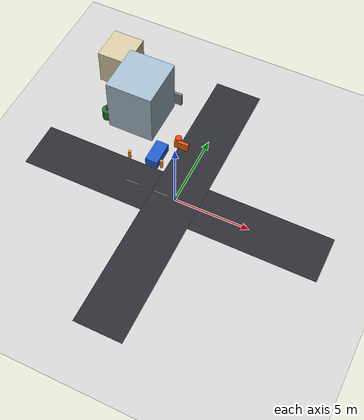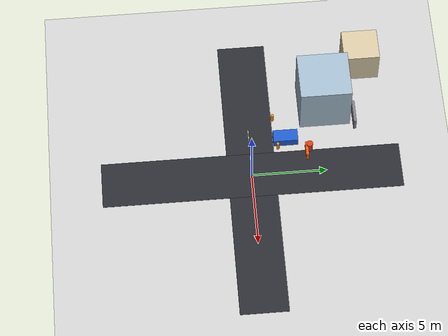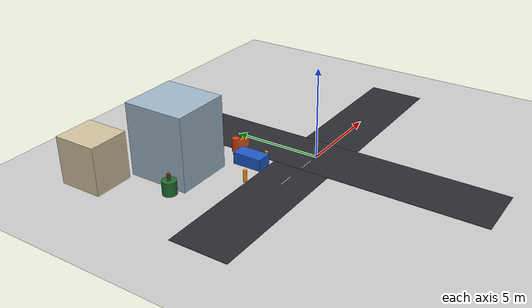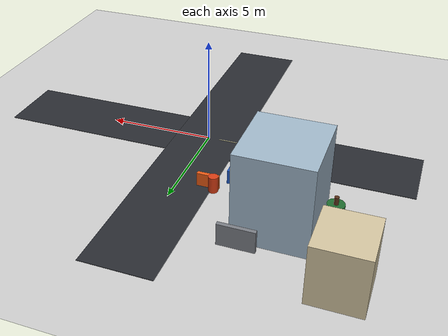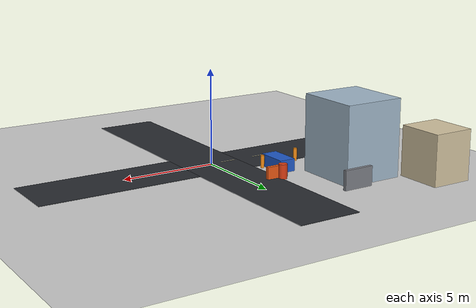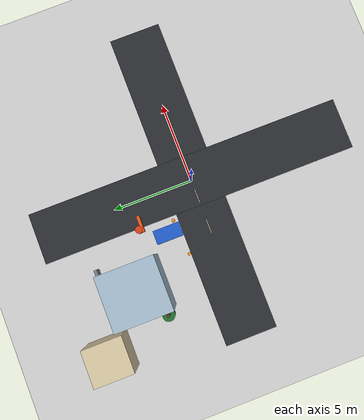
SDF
<sdf version="1.6">
 <world name="vayron_city">
  <include><uri>model://sun</uri></include>
  <include><uri>model://ground_plane</uri></include>
  <model name="main_road_east_west">
   <static>true</static>
   <pose>0 0 0.0125 0 0 0</pose>
   <link name="body">
    <visual name="visual">
     <geometry><box><size>20 3.2 0.025</size></box></geometry>
     <material><ambient>0.16 0.17 0.19 1</ambient><diffuse>0.16 0.17 0.19 1</diffuse></material>
    </visual>
    <collision name="collision"><geometry><box><size>20 3.2 0.025</size></box></geometry></collision>
   </link>
  </model>
  <model name="main_road_north_south">
   <static>true</static>
   <pose>0 0 0.013 0 0 0</pose>
   <link name="body">
    <visual name="visual">
     <geometry><box><size>3.2 20 0.026</size></box></geometry>
     <material><ambient>0.16 0.17 0.19 1</ambient><diffuse>0.16 0.17 0.19 1</diffuse></material>
    </visual>
    <collision name="collision"><geometry><box><size>3.2 20 0.026</size></box></geometry></collision>
   </link>
  </model>
  <model name="lane_horizontal_3">
   <static>true</static>
   <pose>-3 0 0.031 0 0 0</pose>
   <link name="body">
    <visual name="visual">
     <geometry><box><size>0.9 0.045 0.008</size></box></geometry>
     <material><ambient>0.95 0.92 0.72 1</ambient><diffuse>0.95 0.92 0.72 1</diffuse></material>
    </visual>
   </link>
  </model>
  <model name="lane_horizontal_4">
   <static>true</static>
   <pose>-1 0 0.031 0 0 0</pose>
   <link name="body">
    <visual name="visual">
     <geometry><box><size>0.9 0.045 0.008</size></box></geometry>
     <material><ambient>0.95 0.92 0.72 1</ambient><diffuse>0.95 0.92 0.72 1</diffuse></material>
    </visual>
   </link>
  </model>
  <model name="building_C">
   <static>true</static>
   <pose>-5.0 5.2 2.0 0 0 0</pose>
   <link name="body">
    <visual name="visual">
     <geometry><box><size>3.2 3.4 4.0</size></box></geometry>
     <material><ambient>0.63 0.72 0.79 1</ambient><diffuse>0.63 0.72 0.79 1</diffuse></material>
    </visual>
    <collision name="collision"><geometry><box><size>3.2 3.4 4.0</size></box></geometry></collision>
   </link>
  </model>
  <model name="building_D">
   <static>true</static>
   <pose>-8.0 8.0 1.3 0 0 0</pose>
   <link name="body">
    <visual name="visual">
     <geometry><box><size>2.2 2.4 2.6</size></box></geometry>
     <material><ambient>0.83 0.77 0.63 1</ambient><diffuse>0.83 0.77 0.63 1</diffuse></material>
    </visual>
    <collision name="collision"><geometry><box><size>2.2 2.4 2.6</size></box></geometry></collision>
   </link>
  </model>
  <model name="parked_car_1">
   <static>true</static>
   <pose>-2.5 2.45 0.325 0 0 0</pose>
   <link name="body">
    <visual name="visual">
     <geometry><box><size>0.85 1.65 0.65</size></box></geometry>
     <material><ambient>0.12 0.35 0.78 1</ambient><diffuse>0.12 0.35 0.78 1</diffuse></material>
    </visual>
    <collision name="collision"><geometry><box><size>0.85 1.65 0.65</size></box></geometry></collision>
   </link>
  </model>
  <model name="tree_trunk_0">
   <static>true</static>
   <pose>-3.9 4.0 0.55 0 0 0</pose>
   <link name="body">
    <visual name="visual">
     <geometry><cylinder><radius>0.1</radius><length>1.1</length></cylinder></geometry>
     <material><ambient>0.35 0.20 0.10 1</ambient><diffuse>0.35 0.20 0.10 1</diffuse></material>
    </visual>
    <collision name="collision">
     <geometry><cylinder><radius>0.1</radius><length>1.1</length></cylinder></geometry>
    </collision>
   </link>
  </model>
  <model name="tree_canopy_0">
   <static>true</static>
   <pose>-3.9 4.0 0.375 0 0 0</pose>
   <link name="body">
    <visual name="visual">
     <geometry><cylinder><radius>0.38</radius><length>0.75</length></cylinder></geometry>
     <material><ambient>0.12 0.42 0.18 1</ambient><diffuse>0.12 0.42 0.18 1</diffuse></material>
    </visual>
    <collision name="collision">
     <geometry><cylinder><radius>0.38</radius><length>0.75</length></cylinder></geometry>
    </collision>
   </link>
  </model>
  <model name="tree_trunk_1">
   <static>true</static>
   <pose>-7.0 4.1 0.55 0 0 0</pose>
   <link name="body">
    <visual name="visual">
     <geometry><cylinder><radius>0.1</radius><length>1.1</length></cylinder></geometry>
     <material><ambient>0.35 0.20 0.10 1</ambient><diffuse>0.35 0.20 0.10 1</diffuse></material>
    </visual>
    <collision name="collision">
     <geometry><cylinder><radius>0.1</radius><length>1.1</length></cylinder></geometry>
    </collision>
   </link>
  </model>
  <model name="tree_canopy_1">
   <static>true</static>
   <pose>-7.0 4.1 0.375 0 0 0</pose>
   <link name="body">
    <visual name="visual">
     <geometry><cylinder><radius>0.38</radius><length>0.75</length></cylinder></geometry>
     <material><ambient>0.12 0.42 0.18 1</ambient><diffuse>0.12 0.42 0.18 1</diffuse></material>
    </visual>
    <collision name="collision">
     <geometry><cylinder><radius>0.38</radius><length>0.75</length></cylinder></geometry>
    </collision>
   </link>
  </model>
  <model name="bollard_0">
   <static>true</static>
   <pose>-1.9 1.9 0.325 0 0 0</pose>
   <link name="body">
    <visual name="visual">
     <geometry><cylinder><radius>0.1</radius><length>0.65</length></cylinder></geometry>
     <material><ambient>0.95 0.55 0.08 1</ambient><diffuse>0.95 0.55 0.08 1</diffuse></material>
    </visual>
    <collision name="collision">
     <geometry><cylinder><radius>0.1</radius><length>0.65</length></cylinder></geometry>
    </collision>
   </link>
  </model>
  <model name="bollard_4">
   <static>true</static>
   <pose>-4.1 1.7 0.325 0 0 0</pose>
   <link name="body">
    <visual name="visual">
     <geometry><cylinder><radius>0.1</radius><length>0.65</length></cylinder></geometry>
     <material><ambient>0.95 0.55 0.08 1</ambient><diffuse>0.95 0.55 0.08 1</diffuse></material>
    </visual>
    <collision name="collision">
     <geometry><cylinder><radius>0.1</radius><length>0.65</length></cylinder></geometry>
    </collision>
   </link>
  </model>
  <model name="barrel_2">
   <static>true</static>
   <pose>-1.7 4.0 0.375 0 0 0</pose>
   <link name="body">
    <visual name="visual">
     <geometry><cylinder><radius>0.22</radius><length>0.75</length></cylinder></geometry>
     <material><ambient>0.85 0.24 0.08 1</ambient><diffuse>0.85 0.24 0.08 1</diffuse></material>
    </visual>
    <collision name="collision">
     <geometry><cylinder><radius>0.22</radius><length>0.75</length></cylinder></geometry>
    </collision>
   </link>
  </model>
  <model name="traffic_barrier_1">
   <static>true</static>
   <pose>-1.4 3.8 0.325 0 0 0</pose>
   <link name="body">
    <visual name="visual">
     <geometry><box><size>1.0 0.18 0.65</size></box></geometry>
     <material><ambient>0.92 0.35 0.08 1</ambient><diffuse>0.92 0.35 0.08 1</diffuse></material>
    </visual>
    <collision name="collision"><geometry><box><size>1.0 0.18 0.65</size></box></geometry></collision>
   </link>
  </model>
  <model name="inner_wall">
   <static>true</static>
   <pose>-3.8 7.2 0.5 0 0 0</pose>
   <link name="body">
    <visual name="visual">
     <geometry><box><size>1.6 0.18 1.0</size></box></geometry>
     <material><ambient>0.48 0.49 0.52 1</ambient><diffuse>0.48 0.49 0.52 1</diffuse></material>
    </visual>
    <collision name="collision"><geometry><box><size>1.6 0.18 1.0</size></box></geometry></collision>
   </link>
  </model>
 </world>
</sdf>
